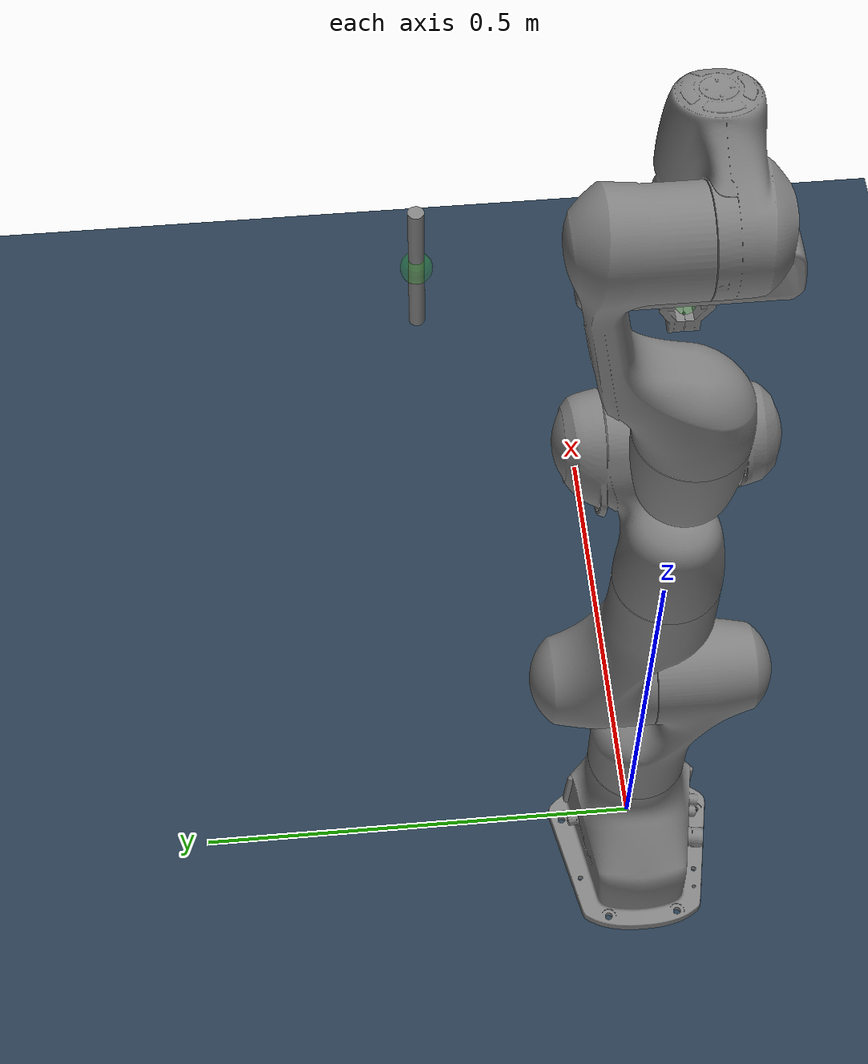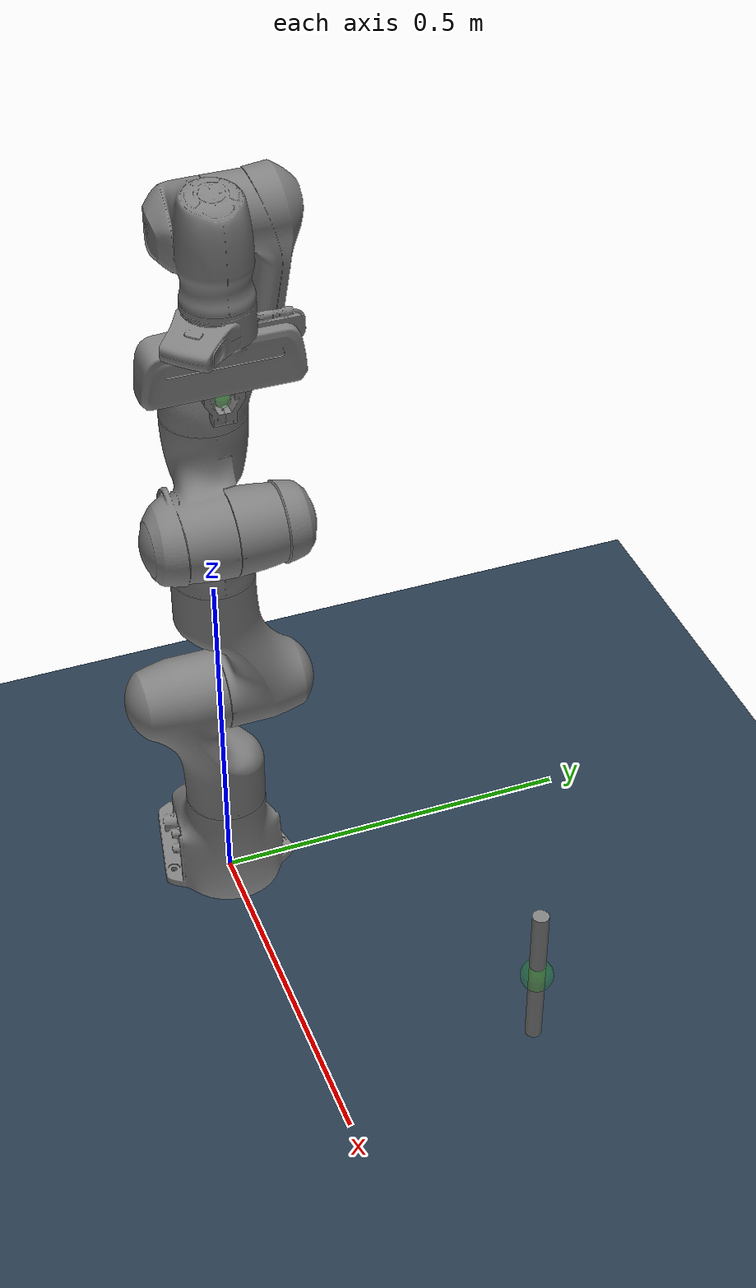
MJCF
<mujoco model='Franka-door'>

    <option gravity='0 0 0'/>
    <default>
         <geom margin='0.001' solref='0.002 1' solimp='0.8 0.8 0.1'/>
    </default>

    <compiler inertiafromgeom='true' angle='radian' meshdir="meshes/"/>

    <include file="franka-assets.xml"/>

    <worldbody>
        <!-- Floor -->
        <geom name='floor' pos='0 0 0' size='2 2 .01' type='plane' material="MatPlane" contype='4'/>
        <!-- Lighting -->
        <light directional='false' diffuse='.7 .7 .7' specular='0.03 0.03 0.03' pos='-1 -1.0 4.0' dir='1 1.0 -4'/>

        <!-- Robot -->
        <body name="robot" pos="0 0 0">
            <include file="franka.xml"/>
        </body>
        <!-- Door -->
        <body name='handle' pos='0.6 0.2 0.31' euler='0 0 3.1415'  user="1001 0 2002 -0.4 -0.1 0.252 0 0.3 0.45">
            <inertial pos='0 0 0' mass='0.2' />
            <joint name='articulation' pos='0 0.3 0' axis='0 0 1' type='hinge' range='-1.7 1.7' frictionloss='1'/>
            <geom name='handle' type='cylinder' size='0.01 0.1 0.01' pos='0 0 0' euler='0 0 0'/>
            <site name='handle' pos='0 0 0' size='0.02' rgba='0 1 0 0.125'/>
        </body>

    </worldbody>

    <sensor>
        <jointpos name='joint1' joint='joint1'/>
        <jointpos name='joint2' joint='joint2'/>
        <jointpos name='joint3' joint='joint3'/>
        <jointpos name='joint4' joint='joint4'/>
        <jointpos name='joint5' joint='joint5'/>
        <jointpos name='joint6' joint='joint6'/>
        <jointpos name='joint7' joint='joint7'/>
        <jointpos name='finger1' joint='finger1'/>

        <jointvel name='vjoint1' joint='joint1'/>
        <jointvel name='vjoint2' joint='joint2'/>
        <jointvel name='vjoint3' joint='joint3'/>
        <jointvel name='vjoint4' joint='joint4'/>
        <jointvel name='vjoint5' joint='joint5'/>
        <jointvel name='vjoint6' joint='joint6'/>
        <jointvel name='vjoint7' joint='joint7'/>
        <jointvel name='vfinger1' joint='finger1'/>

        <framequat name='gripper_rot' objtype='site' objname='grasp'/>

        <framepos name='gripper_pos' objtype='site' objname='grasp'/>
        <framepos name='handle-pos' objtype='body' objname='handle'/>

    </sensor>

</mujoco>

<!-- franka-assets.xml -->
<mujocoinclude>

    <option timestep="0.002" iterations="200" noslip_iterations="200"/>
    <size njmax="500" nconmax="100" nstack="600000" />
    <default>

        <joint limited="true" margin="0.001" armature="0.1" damping="0.1" frictionloss="0.1" />
        <geom friction="1 0.5 0.01" margin="0.0005" />
        <site size="0.005 0 0" rgba="0.4 0.9 0.4 1" />
        <general ctrllimited="true" ctrlrange="-1 1"
            user="0 1 0.03 0.0939711 0.513477 0.0358776 1.23598 8.40409 0.485031 6.04244 1.02187 0.175297 0.121642 0 0 0" />

        <default class='visual'>
            <geom type='mesh' euler='1.57079 0.0 0.0'/>
        </default>
    </default>

    <visual>
        <global offwidth="3024" offheight="1680" />
        <quality shadowsize="4096" offsamples="8" />
        <map force="0.1" fogend="5" />
    </visual>

    <asset>
        <texture type="skybox" builtin="gradient" width="128" height="128" rgb1=".4 .6 .8"
            rgb2="0 0 0"/>
        <texture name="texgeom" type="cube" builtin="flat" mark="cross" width="127" height="1278"
            rgb1="0.8 0.6 0.4" rgb2="0.8 0.6 0.4" markrgb="1 1 1" random="0.01"/>
        <texture name="texplane" type="2d" builtin="checker" rgb1=".2 .3 .4" rgb2=".1 0.15 0.2"
            width="512" height="512"/>

        <material name='MatPlane' reflectance='0.3' texture="texplane" texrepeat="1 1" texuniform="true"/>
        <material name='geom' texture="texgeom" texuniform="true"/>

        <mesh name="viz_finger" file="franka/finger.stl"/>
        <mesh name="viz_hand"   file="franka/hand.stl"/>
        <mesh name="viz_link0"  file="franka/link0.stl"/>
        <mesh name="viz_link1"  file="franka/link1.stl"/>
        <mesh name="viz_link2"  file="franka/link2.stl"/>
        <mesh name="viz_link3"  file="franka/link3.stl"/>
        <mesh name="viz_link4"  file="franka/link4.stl"/>
        <mesh name="viz_link5"  file="franka/link5.stl"/>
        <mesh name="viz_link6"  file="franka/link6.stl"/>
        <mesh name="viz_link7"  file="franka/link7.stl"/>
    </asset>

    <equality>
        <!-- Links default hand grippers together -->
        <joint name='finger2' joint1='finger1' joint2='finger2' polycoef="0 -1 0 0 0" />
    </equality>

    <equality>
        <weld body1="franka:mocap" body2="hand" solimp="0.9 0.95 0.001" solref="0.02 1"></weld>
    </equality>

    <actuator>
        <velocity name='joint1' ctrlrange='-2 2' kv='10'  joint='joint1' />
        <velocity name='joint2' ctrlrange='-2 2' kv='10'  joint='joint2' />
        <velocity name='joint3' ctrlrange='-2 2' kv='10'  joint='joint3' />
        <velocity name='joint4' ctrlrange='-2 2' kv='10'  joint='joint4' />
        <velocity name='joint5' ctrlrange='-2 2' kv='10' joint='joint5' />
        <velocity name='joint6' ctrlrange='-2 2' kv='10' joint='joint6' />
        <velocity name='joint7' ctrlrange='-2 2' kv='10' joint='joint7' />
        <velocity name='finger' ctrlrange='-2 2' kv='10' joint='finger2' />

    </actuator>

</mujocoinclude>

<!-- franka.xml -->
<mujocoinclude>
    <body name='link0' pos='0 0 0'>
        <geom name='vlink0' mesh='viz_link0' class='visual'/>
        <body name='link1' pos='0 0 0.333'>
            <joint name='joint1' pos='0 0 -0.333' range='-2.8973 2.8973'  />
            <geom name='vlink1' mesh='viz_link1' class='visual'/>
            <body name='link2' pos='0 0 0' euler='-1.5707 0 0' >
                <joint name='joint2' pos='0 0 0' range='-1.7628 1.7628'  />
                <geom name='vlink2' mesh='viz_link2' class='visual'/>
                <body name='link3' pos='0 -0.316 0' euler='1.5707 0 0' >
                    <joint name='joint3' pos='0 0 -0.12' range='-2.8973 2.8973' />
                    <geom name='vlink3' mesh='viz_link3' class='visual'/>
                    <body name='link4' pos='0.0825 0 0' euler='1.5707 0 0' >
                        <joint name='joint4' pos='0 0 0' range='-3.0718 -0.0698' />
                        <geom name='vlink4' mesh='viz_link4' class='visual'/>
                        <body name='link5' pos='-0.0825 0.384 0' euler='-1.5707 0 0' >
                            <joint name='joint5' pos='0 0 -0.26' range='-2.8973 2.9873' />
                            <geom name='vlink5' mesh='viz_link5' class='visual'/>
                            <body name='link6' pos='0 0 0' euler='1.5707 0 0' >
                                <joint name='joint6' pos='0 0 0' range='-0.0175 3.7525' />
                                <geom name='vlink6' mesh='viz_link6' class='visual'/>
                                <body name='link7' pos='0.088 0 0' euler='1.5707 0 0' >
                                    <joint name='joint7' pos='0 0 0' range='-2.8973 2.9873' />
                                    <geom name='vlink7' mesh='viz_link7' class='visual'/>
                                    <!-- Hand Start-->
                                    <body name='hand' pos='0 0 0.107' euler='0 0 0' >
                                        <site name='grasp' pos='0 0 0.08' size='0.01' rgba='0 1 0 0.125'/>
                                        <geom name='vhand' mesh='viz_hand' class='visual'/>
                                        <body name='finger1' pos='0 0 0.0584' euler='0 0 0' >
                                            <joint name='finger1' type='slide'
                                                    axis='0 1 0' pos='0 0 0' range='0.0 0.03' />
                                            <geom name='vf1' mesh='viz_finger' class='visual'/>
                                        </body>
                                        <body name='finger2' pos='0 0 0.0584' euler='0 0 -3.1415' >
                                            <joint name='finger2' type='slide'
                                                    axis='0 -1 0' pos='0 0 0' range='-0.03 0' />
                                            <geom name='vf2' mesh='viz_finger' class='visual'/>
                                        </body>
                                    </body>
                                    <!-- Hand End -->
                                </body>
                            </body>
                        </body>
                    </body>
                </body>
            </body>
        </body>
    </body>
</mujocoinclude>
